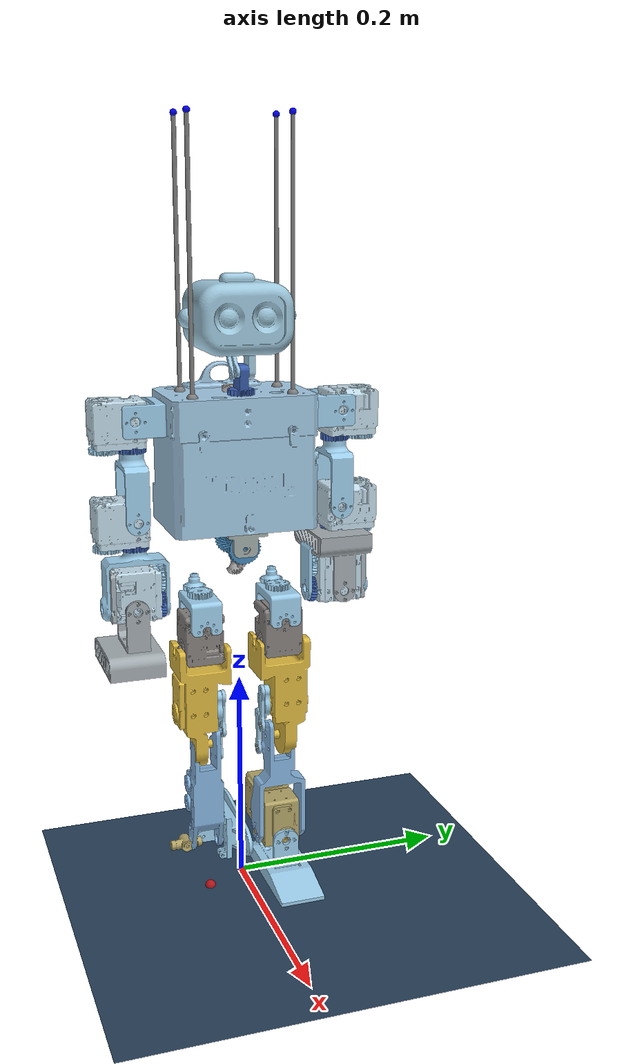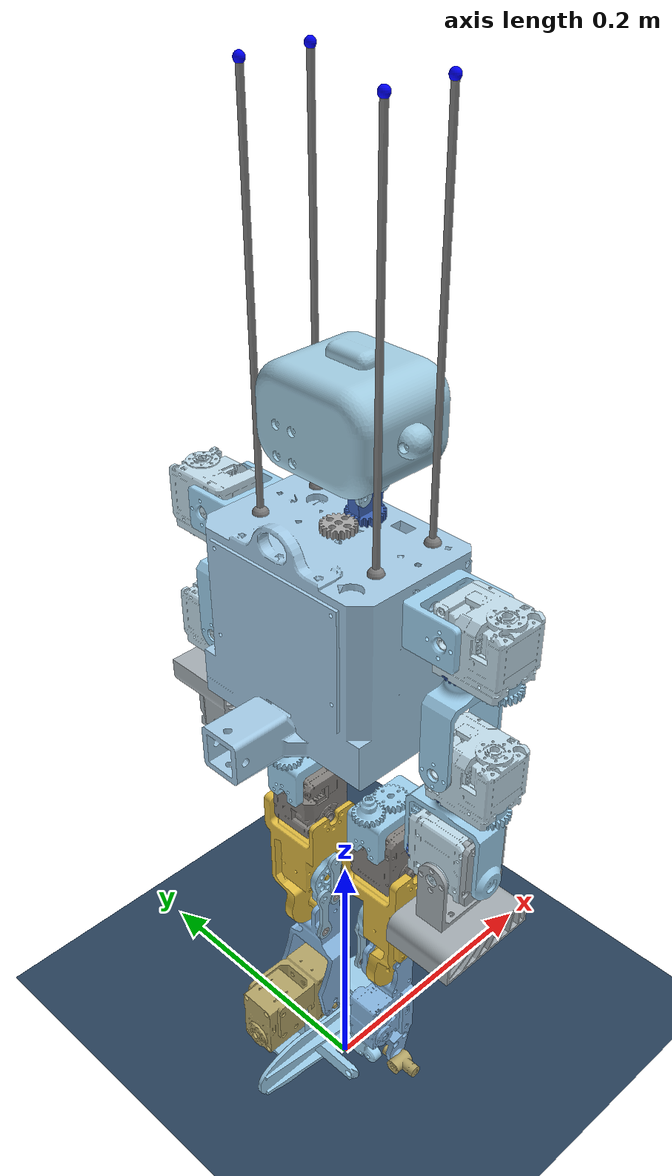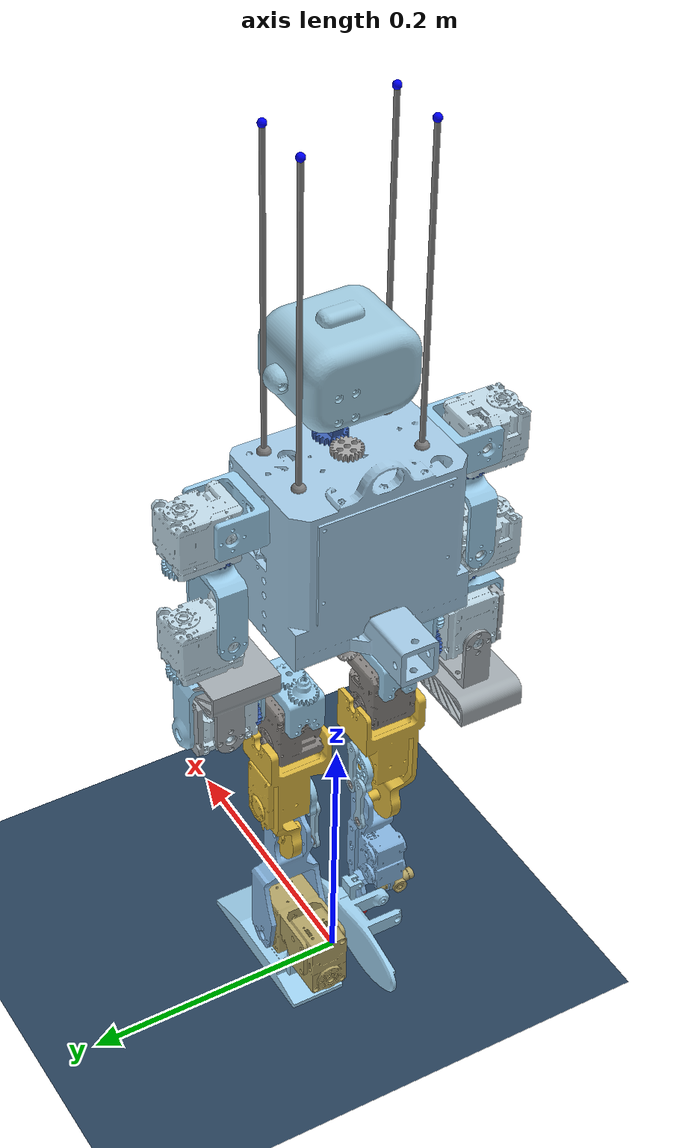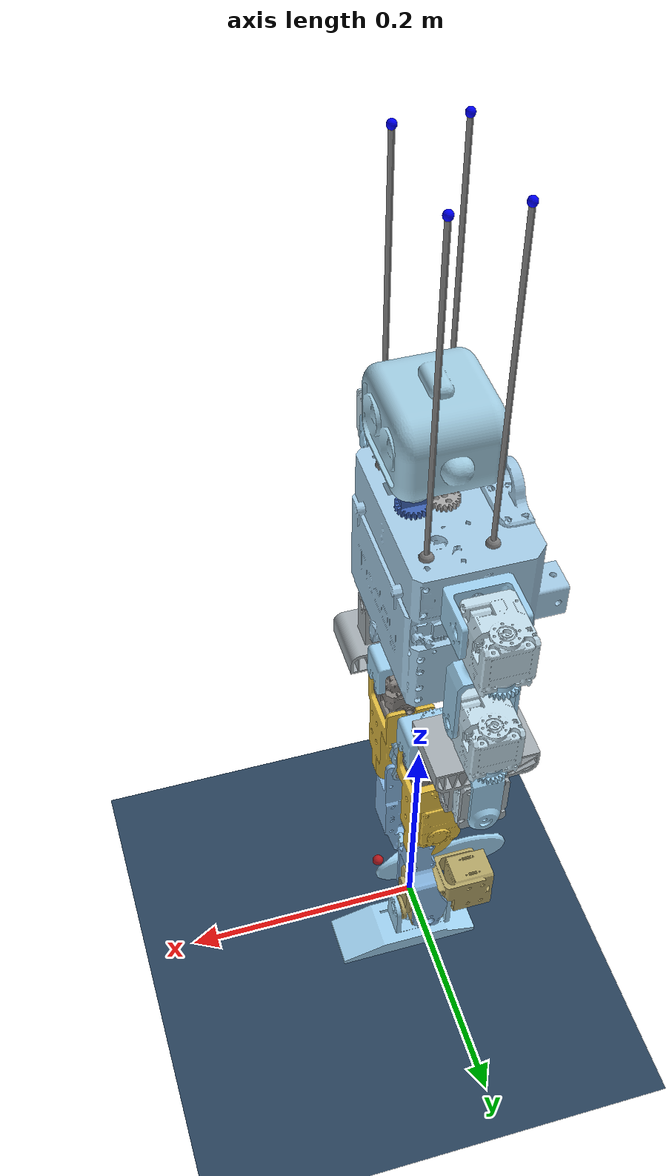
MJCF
<mujoco model="toddlerbot_OP3_hang_scene"><include file="toddlerbot_OP3_hang.xml" /><statistic center="0 0 0.25" extent="0.6" /><visual><headlight diffuse="0.6 0.6 0.6" ambient="0.3 0.3 0.3" specular="0 0 0" /><rgba haze="0.15 0.25 0.35 1" /><global azimuth="160" elevation="-20" offwidth="1280" offheight="720" /></visual><worldbody><light pos="0 0 1.5" dir="0 0 -1" directional="true" /><camera name="perspective" pos="0.7 -0.7 0.7" xyaxes="1 1 0 -1 1 3" mode="trackcom" /><camera name="side" pos="0 -1 0.6" xyaxes="1 0 0 0 1 3" mode="trackcom" /><camera name="top" pos="0 0 1" xyaxes="0 1 0 -1 0 0" mode="trackcom" /><camera name="front" pos="1 0 0.6" xyaxes="0 1 0 -1 0 3" mode="trackcom" /><geom name="floor" size="0 0 0.05" type="plane" material="groundplane" condim="3" /></worldbody><asset><texture type="skybox" builtin="gradient" rgb1="0.3 0.5 0.7" rgb2="0 0 0" width="512" height="3072" /><texture type="2d" name="groundplane" builtin="checker" mark="edge" rgb1="0.2 0.3 0.4" rgb2="0.1 0.2 0.3" markrgb="0.8 0.8 0.8" width="300" height="300" /><material name="groundplane" texture="groundplane" texuniform="true" texrepeat="5 5" reflectance="0.0" /></asset></mujoco>

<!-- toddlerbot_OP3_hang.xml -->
<mujoco model="toddlerbot_OP3">
  <compiler angle="radian" autolimits="true" />

  <asset>
    <mesh name="torso_visual" file="../assemblies/toddlerbot/meshes/torso_visual.stl" />
    <mesh name="spur_1m_20t_visual" file="../assemblies/toddlerbot/meshes/spur_1m_20t_visual.stl" />
    <mesh name="neck_yaw_link_v2_visual" file="../assemblies/toddlerbot/meshes/neck_yaw_link_v2_visual.stl" />
    <mesh name="head_visual" file="../assemblies/toddlerbot/meshes/head_visual.stl" />
    <mesh name="motor_plate_visual" file="../assemblies/toddlerbot/meshes/motor_plate_visual.stl" />
    <mesh name="bearing_683_visual" file="../assemblies/toddlerbot/meshes/bearing_683_visual.stl" />
    <mesh name="bearing_683_2_visual" file="../assemblies/toddlerbot/meshes/bearing_683_2_visual.stl" />
    <mesh name="neck_rod_visual" file="../assemblies/toddlerbot/meshes/neck_rod_visual.stl" />
    <mesh name="neck_rod_2_visual" file="../assemblies/toddlerbot/meshes/neck_rod_2_visual.stl" />
    <mesh name="waist_gears_visual" file="../assemblies/toddlerbot/meshes/waist_gears_visual.stl" />
    <mesh name="waist_link_visual" file="../assemblies/toddlerbot/meshes/waist_link_visual.stl" />
    <mesh name="spiral_bevel_1m_14t_30deg_visual" file="../assemblies/toddlerbot/meshes/spiral_bevel_1m_14t_30deg_visual.stl" />
    <mesh name="spiral_bevel_1m_14t_30deg_2_visual" file="../assemblies/toddlerbot/meshes/spiral_bevel_1m_14t_30deg_2_visual.stl" />
    <mesh name="spur_gear_19_teeth_visual" file="../assemblies/toddlerbot/meshes/spur_gear_19_teeth_visual.stl" />
    <mesh name="spur_gear_21_teeth_visual" file="../assemblies/toddlerbot/meshes/spur_gear_21_teeth_visual.stl" />
    <mesh name="spur_gear_19_teeth_2_visual" file="../assemblies/toddlerbot/meshes/spur_gear_19_teeth_2_visual.stl" />
    <mesh name="spur_gear_21_teeth_2_visual" file="../assemblies/toddlerbot/meshes/spur_gear_21_teeth_2_visual.stl" />
    <mesh name="left_hip_yaw_link_visual" file="../assemblies/left_leg_OP3/meshes/left_hip_yaw_link_visual.stl" />
    <mesh name="left_hip_roll_link_visual" file="../assemblies/left_leg_OP3/meshes/left_hip_roll_link_visual.stl" />
    <mesh name="left_hip_pitch_link_xm430_visual" file="../assemblies/left_leg_OP3/meshes/left_hip_pitch_link_xm430_visual.stl" />
    <mesh name="left_calf_link_visual" file="../assemblies/left_leg_OP3/meshes/left_calf_link_visual.stl" />
    <mesh name="left_bearing_683_visual" file="../assemblies/left_leg_OP3/meshes/left_bearing_683_visual.stl" />
    <mesh name="left_bearing_683_2_visual" file="../assemblies/left_leg_OP3/meshes/left_bearing_683_2_visual.stl" />
    <mesh name="left_ank_pitch_link_visual" file="../assemblies/left_leg_OP3/meshes/left_ank_pitch_link_visual.stl" />
    <mesh name="left_ank_roll_link_visual" file="../assemblies/left_leg_OP3/meshes/left_ank_roll_link_visual.stl" />
    <mesh name="left_xm430_plate_visual" file="../assemblies/left_leg_OP3/meshes/left_xm430_plate_visual.stl" />
    <mesh name="left_knee_rod_visual" file="../assemblies/left_leg_OP3/meshes/left_knee_rod_visual.stl" />
    <mesh name="left_knee_rod_2_visual" file="../assemblies/left_leg_OP3/meshes/left_knee_rod_2_visual.stl" />
    <mesh name="right_hip_yaw_link_visual" file="../assemblies/right_leg_OP3/meshes/right_hip_yaw_link_visual.stl" />
    <mesh name="right_hip_roll_link_visual" file="../assemblies/right_leg_OP3/meshes/right_hip_roll_link_visual.stl" />
    <mesh name="right_hip_pitch_link_xm430_visual" file="../assemblies/right_leg_OP3/meshes/right_hip_pitch_link_xm430_visual.stl" />
    <mesh name="right_calf_link_visual" file="../assemblies/right_leg_OP3/meshes/right_calf_link_visual.stl" />
    <mesh name="right_bearing_683_visual" file="../assemblies/right_leg_OP3/meshes/right_bearing_683_visual.stl" />
    <mesh name="right_bearing_683_2_visual" file="../assemblies/right_leg_OP3/meshes/right_bearing_683_2_visual.stl" />
    <mesh name="right_ank_pitch_link_visual" file="../assemblies/right_leg_OP3/meshes/right_ank_pitch_link_visual.stl" />
    <mesh name="right_ank_roll_link_visual" file="../assemblies/right_leg_OP3/meshes/right_ank_roll_link_visual.stl" />
    <mesh name="right_xm430_plate_visual" file="../assemblies/right_leg_OP3/meshes/right_xm430_plate_visual.stl" />
    <mesh name="right_knee_rod_visual" file="../assemblies/right_leg_OP3/meshes/right_knee_rod_visual.stl" />
    <mesh name="right_knee_rod_2_visual" file="../assemblies/right_leg_OP3/meshes/right_knee_rod_2_visual.stl" />
    <mesh name="left_sho_pitch_link_visual" file="../assemblies/left_arm_umi/meshes/left_sho_pitch_link_visual.stl" />
    <mesh name="left_2xl430_gears_visual" file="../assemblies/left_arm_umi/meshes/left_2xl430_gears_visual.stl" />
    <mesh name="left_spur_1m_24t_drive_visual" file="../assemblies/left_arm_umi/meshes/left_spur_1m_24t_drive_visual.stl" />
    <mesh name="left_spur_1m_24t_driven_visual" file="../assemblies/left_arm_umi/meshes/left_spur_1m_24t_driven_visual.stl" />
    <mesh name="left_sho_yaw_link_visual" file="../assemblies/left_arm_umi/meshes/left_sho_yaw_link_visual.stl" />
    <mesh name="left_2xl430_gears_2_visual" file="../assemblies/left_arm_umi/meshes/left_2xl430_gears_2_visual.stl" />
    <mesh name="left_spur_1m_24t_drive_2_visual" file="../assemblies/left_arm_umi/meshes/left_spur_1m_24t_drive_2_visual.stl" />
    <mesh name="left_spur_1m_24t_driven_2_visual" file="../assemblies/left_arm_umi/meshes/left_spur_1m_24t_driven_2_visual.stl" />
    <mesh name="left_elb_yaw_link_visual" file="../assemblies/left_arm_umi/meshes/left_elb_yaw_link_visual.stl" />
    <mesh name="left_spur_1m_24t_driven_3_visual" file="../assemblies/left_arm_umi/meshes/left_spur_1m_24t_driven_3_visual.stl" />
    <mesh name="left_2xl430_gears_3_visual" file="../assemblies/left_arm_umi/meshes/left_2xl430_gears_3_visual.stl" />
    <mesh name="left_spur_1m_24t_drive_3_visual" file="../assemblies/left_arm_umi/meshes/left_spur_1m_24t_drive_3_visual.stl" />
    <mesh name="left_hand_visual" file="../assemblies/left_arm_umi/meshes/left_hand_visual.stl" />
    <mesh name="left_wrist_bearing_plate_visual" file="../assemblies/left_arm_umi/meshes/left_wrist_bearing_plate_visual.stl" />
    <mesh name="right_sho_pitch_link_visual" file="../assemblies/right_arm_umi/meshes/right_sho_pitch_link_visual.stl" />
    <mesh name="right_2xl430_gears_visual" file="../assemblies/right_arm_umi/meshes/right_2xl430_gears_visual.stl" />
    <mesh name="right_spur_1m_24t_drive_visual" file="../assemblies/right_arm_umi/meshes/right_spur_1m_24t_drive_visual.stl" />
    <mesh name="right_spur_1m_24t_driven_visual" file="../assemblies/right_arm_umi/meshes/right_spur_1m_24t_driven_visual.stl" />
    <mesh name="right_sho_yaw_link_visual" file="../assemblies/right_arm_umi/meshes/right_sho_yaw_link_visual.stl" />
    <mesh name="right_2xl430_gears_2_visual" file="../assemblies/right_arm_umi/meshes/right_2xl430_gears_2_visual.stl" />
    <mesh name="right_spur_1m_24t_drive_2_visual" file="../assemblies/right_arm_umi/meshes/right_spur_1m_24t_drive_2_visual.stl" />
    <mesh name="right_spur_1m_24t_driven_2_visual" file="../assemblies/right_arm_umi/meshes/right_spur_1m_24t_driven_2_visual.stl" />
    <mesh name="right_elb_yaw_link_visual" file="../assemblies/right_arm_umi/meshes/right_elb_yaw_link_visual.stl" />
    <mesh name="right_spur_1m_24t_driven_3_visual" file="../assemblies/right_arm_umi/meshes/right_spur_1m_24t_driven_3_visual.stl" />
    <mesh name="right_2xl430_gears_3_visual" file="../assemblies/right_arm_umi/meshes/right_2xl430_gears_3_visual.stl" />
    <mesh name="right_spur_1m_24t_drive_3_visual" file="../assemblies/right_arm_umi/meshes/right_spur_1m_24t_drive_3_visual.stl" />
    <mesh name="right_hand_visual" file="../assemblies/right_arm_umi/meshes/right_hand_visual.stl" />
    <mesh name="right_wrist_bearing_plate_visual" file="../assemblies/right_arm_umi/meshes/right_wrist_bearing_plate_visual.stl" />
  </asset>

  <worldbody>
    <body name="torso" pos="0 0 0.3451" quat="1 0 0 0">
      <inertial pos="-0.00453191 -0.00330468 0.0655941" quat="1.0 0.0 0.0 0.0" mass="1.13697" diaginertia="2.98259e-03 2.39695e-03 2.51264e-03" />
      <freejoint />
      <geom type="mesh" rgba="0.637613 0.7914 0.897448 1" mesh="torso_visual" class="visual" />
      <body name="spur_1m_20t" pos="-0.005 0 0.121487" quat="1 0 0 0">
        <inertial pos="0 0 0.00338423" quat="0.5 0.5 -0.5 0.5" mass="0.0015778" diaginertia="8.17371e-08 4.58744e-08 4.58744e-08" />
        <joint name="neck_yaw_drive" pos="0 0 0" axis="0 0 1" range="-2.87979 2.87979" damping="0.134" armature="0.0035" frictionloss="0.014" />
        <geom type="mesh" rgba="0.647059 0.647059 0.647059 1" mesh="spur_1m_20t_visual" class="visual" />
      </body>
      <body name="neck_yaw_link_v2" pos="0.016 0 0.122487" quat="1 0 0 0">
        <inertial pos="-1.1404e-06 -1.18419e-10 0.00825718" quat="0.707105 -0.00174547 -0.00174547 0.707105" mass="0.00672988" diaginertia="6.12185e-07 5.22667e-07 2.80623e-07" />
        <joint name="neck_yaw_driven" pos="0 0 0" axis="0 0 1" range="-2.61799 2.61799" damping="0.0" armature="0.0" frictionloss="0.0" />
        <geom type="mesh" rgba="0.231373 0.380392 0.705882 1" mesh="neck_yaw_link_v2_visual" class="visual" />
        <body name="head" pos="0 0.004 0.0194" quat="-0.499092 -0.499092 -0.500906 0.500906">
          <inertial pos="-0.0438326 -0.0104902 -0.00040226" quat="0.968184 -0.235784 -0.0566948 0.0617352" mass="0.127721" diaginertia="0.00011586 0.000102768 8.14402e-05" />
          <joint name="neck_pitch" pos="0 0 0" axis="0 0 1" range="-1.39626 0.610865" damping="0.0" armature="0.0" frictionloss="0.0" />
          <geom type="mesh" rgba="0.626858 0.794552 0.876526 1" mesh="head_visual" class="visual" />
          <body name="motor_plate" pos="-0.0326157 -0.027 0.0025" quat="0 0 1 0">
            <inertial pos="0 0 -0.00282818" quat="0.092296 0.701057 -0.092296 0.701057" mass="0.0017" diaginertia="9.21947e-08 5.20711e-08 4.77616e-08" />
            <joint name="neck_pitch_act" pos="0 0 0" axis="0 0 1" range="-1.39626 0.610865" damping="0.134" armature="0.0035" frictionloss="0.014" />
            <geom type="mesh" rgba="0.647059 0.647059 0.647059 1" mesh="motor_plate_visual" class="visual" />
            <body name="bearing_683" pos="-0.00194114 -0.00724444 -0.0055" quat="0.904588 0 0 0.426286">
              <inertial pos="0 0 -0.00155" quat="0.5 0.5 -0.5 0.5" mass="0.000486947" diaginertia="3.53036e-09 2.15515e-09 2.15515e-09" />
              <joint name="neck_pitch_front_rev_2" pos="0 0 0" axis="0 0 1" range="-6.28319 6.28319" damping="0.0" armature="0.0" frictionloss="0.0" />
              <geom type="mesh" rgba="0.647059 0.647059 0.647059 1" mesh="bearing_683_visual" class="visual" />
            </body>
            <body name="bearing_683_2" pos="0.00194114 0.00724444 -0.0055" quat="0.905205 0 0 0.424976">
              <inertial pos="0 0 -0.00155" quat="0.5 0.5 -0.5 0.5" mass="0.000486947" diaginertia="3.53036e-09 2.15515e-09 2.15515e-09" />
              <joint name="neck_pitch_back_rev_2" pos="0 0 0" axis="0 0 1" range="-6.28319 6.28319" damping="0.0" armature="0.0" frictionloss="0.0" />
              <geom type="mesh" rgba="0.647059 0.647059 0.647059 1" mesh="bearing_683_2_visual" class="visual" />
            </body>
          </body>
        </body>
        <body name="neck_rod" pos="-0.00724444 -0.004 0.0174589" quat="0.302589 -0.302589 -0.639093 -0.639093">
          <inertial pos="0.017943 -4.23023e-05 -0.00160238" quat="0.000198565 0.707349 -0.000198429 0.706864" mass="0.00316295" diaginertia="8.05739e-07 7.94302e-07 1.61826e-08" />
          <joint name="neck_pitch_front_rev_1" pos="0 0 0" axis="0 0 1" range="-6.28319 6.28319" damping="0.0" armature="0.0" frictionloss="0.0" />
          <geom type="mesh" rgba="0.620516 0.786408 0.885943 1" mesh="neck_rod_visual" class="visual" />
        </body>
        <body name="neck_rod_2" pos="0.00724444 -0.004 0.0213411" quat="-0.301664 0.301664 0.63953 0.63953">
          <inertial pos="0.0179011 4.23023e-05 -0.00160238" quat="-0.000198322 0.707349 0.000198186 0.706865" mass="0.00316295" diaginertia="8.04875e-07 7.93438e-07 1.61826e-08" />
          <joint name="neck_pitch_back_rev_1" pos="0 0 0" axis="0 0 1" range="-6.28319 6.28319" damping="0.0" armature="0.0" frictionloss="0.0" />
          <geom type="mesh" rgba="0.620516 0.786408 0.885943 1" mesh="neck_rod_2_visual" class="visual" />
        </body>
      </body>
      <body name="waist_gears" pos="0 0 0" quat="0 0 0 1">
        <inertial pos="-2.9089e-07 5.50356e-08 -0.012593" quat="0.49998 0.500022 0.500015 0.499983" mass="0.0263372" diaginertia="7.30247e-06 6.98591e-06 1.5367e-06" />
        <joint name="waist_yaw" pos="0 0 0" axis="0 0 1" range="-1.5708 1.5708" damping="0.108" armature="0.0053" frictionloss="0.001" />
        <geom type="mesh" rgba="0.269062 0.522792 0.704918 1" mesh="waist_gears_visual" class="visual" />
        <body name="waist_link" pos="-0.0227079 0 -0.014" quat="0.5 -0.5 -0.5 0.5">
          <inertial pos="-7.97405e-06 0.0262289 -0.0299843" quat="0.529847 0.469443 0.509625 0.489048" mass="0.17012" diaginertia="0.000206127 0.000162044 7.0129e-05" />
          <joint name="waist_roll" pos="0 0 0" axis="0 0 1" range="-0.523599 0.523599" damping="0.488" armature="0.0018" frictionloss="0.03" />
          <geom type="mesh" rgba="0.634303 0.681265 0.66861 1" mesh="waist_link_visual" class="visual" />
          <body name="spiral_bevel_1m_14t_30deg" pos="0 0.0196 -0.01275" quat="0.5 0.5 0.5 -0.5">
            <inertial pos="7.49714e-10 7.18022e-10 0.0066869" quat="0.5 0.5 -0.5 0.5" mass="0.000732615" diaginertia="1.4356e-08 1.34951e-08 1.34951e-08" />
            <joint name="waist_act_1" pos="0 0 0" axis="0 0 1" range="-4.67748 4.67748" damping="0.134" armature="0.0035" frictionloss="0.014" />
            <geom type="mesh" rgba="0.647059 0.647059 0.647059 1" mesh="spiral_bevel_1m_14t_30deg_visual" class="visual" />
          </body>
          <body name="spiral_bevel_1m_14t_30deg_2" pos="0 0.0196 -0.03275" quat="0.552838 0.552838 0.440874 -0.440874">
            <inertial pos="5.71143e-10 8.66847e-10 0.0066869" quat="0.5 0.5 -0.5 0.5" mass="0.000732615" diaginertia="1.4356e-08 1.34951e-08 1.34951e-08" />
            <joint name="waist_act_2" pos="0 0 0" axis="0 0 1" range="-4.67748 4.67748" damping="0.134" armature="0.0035" frictionloss="0.014" />
            <geom type="mesh" rgba="0.647059 0.647059 0.647059 1" mesh="spiral_bevel_1m_14t_30deg_2_visual" class="visual" />
          </body>
          <body name="spur_gear_19_teeth" pos="-0.037 0.0311 -0.0392" quat="0 0 0.707107 0.707107">
            <inertial pos="3.98262e-10 -1.60016e-10 0.0101085" quat="0.5 0.5 -0.5 0.5" mass="0.0010325" diaginertia="4.06876e-08 3.32386e-08 3.32386e-08" />
            <joint name="left_hip_yaw_drive" pos="0 0 0" axis="0 0 1" range="-1.73614 1.73614" damping="0.134" armature="0.0035" frictionloss="0.014" />
            <geom type="mesh" rgba="0.615686 0.811765 0.929412 1" mesh="spur_gear_19_teeth_visual" class="visual" />
          </body>
          <body name="spur_gear_21_teeth" pos="-0.037 0.0411 -0.0195" quat="0.5 -0.5 -0.5 -0.5">
            <inertial pos="-2.35688e-12 0 0.0142238" quat="0.5 0.5 0.5 0.5" mass="0.0190254" diaginertia="7.88717e-06 7.83448e-06 2.82998e-06" />
            <joint name="left_hip_yaw_driven" pos="0 0 0" axis="0 0 1" range="-1.5708 1.5708" damping="0.0" armature="0.0" frictionloss="0.685" />
            <geom type="mesh" rgba="0.615686 0.811765 0.929412 1" mesh="spur_gear_21_teeth_visual" class="visual" />
            <geom pos="0 0 0.005" quat="0 -1 0 0" type="mesh" rgba="0.615686 0.811765 0.929412 1" mesh="left_hip_yaw_link_visual" class="visual" />
            <body name="hip_roll_link" pos="0.019 0 0.031" quat="-0.707107 0 -0.707107 0">
              <inertial pos="-0.0119998 -0.000495981 -0.0185041" quat="-0.273471 0.652073 -0.267709 0.654482" mass="0.1106" diaginertia="3.14464e-05 3.02975e-05 2.28182e-05" />
              <joint name="left_hip_roll" pos="0 0 0" axis="0 0 1" range="-0.785398 0.785398" damping="0.075" armature="0.0044" frictionloss="0.252" />
              <geom type="mesh" rgba="0.516987 0.503478 0.490506 1" mesh="left_hip_roll_link_visual" class="visual" />
              <body name="left_hip_pitch_link_xm430" pos="-0.024 -0.019 -0.019" quat="0.5 0.5 0.5 -0.5">
                <inertial pos="-0.000757292 -0.0507148 -0.0126562" quat="0.719538 0.693946 0.0141894 -0.0224076" mass="0.114801" diaginertia="6.60879e-05 6.2263e-05 2.35772e-05" />
                <joint name="left_hip_pitch" pos="0 0 0" axis="0 0 1" range="-1.5708 1.5708" damping="0.075" armature="0.0044" frictionloss="0.252" />
                <geom type="mesh" rgba="0.870722 0.72641 0.247852 1" mesh="left_hip_pitch_link_xm430_visual" class="visual" />
                <body name="left_calf_link" pos="0 -0.096 -0.0092" quat="1 0 0 0">
                  <inertial pos="-0.00445232 -0.0407105 -0.00939617" quat="0.69479 0.718422 0.0108806 0.0319238" mass="0.031" diaginertia="3.27619e-05 2.76362e-05 7.62792e-06" />
                  <joint name="left_knee" pos="0 0 0" axis="0 0 1" range="0 2.0944" damping="0.0" armature="0.0" frictionloss="0.0" />
                  <geom type="mesh" rgba="0.522707 0.7074 0.875332 1" mesh="left_calf_link_visual" class="visual" />
                  <body name="bearing_683_3" pos="-0.00574025 0.0138582 -0.0262" quat="0.705054 0 0 0.709153">
                    <inertial pos="0 0 -0.00155" quat="0.5 0.5 -0.5 0.5" mass="0.000486947" diaginertia="3.53036e-09 2.15515e-09 2.15515e-09" />
                    <joint name="left_knee_front_rev_2" pos="0 0 0" axis="0 0 1" range="-6.28319 6.28319" damping="0.0" armature="0.0" frictionloss="0.0" />
                    <geom type="mesh" rgba="0.647059 0.647059 0.647059 1" mesh="left_bearing_683_visual" class="visual" />
                  </body>
                  <body name="bearing_683_4" pos="0.00574025 -0.0138582 -0.0262" quat="0.706081 0 0 0.708131">
                    <inertial pos="0 0 -0.00155" quat="0.5 0.5 -0.5 0.5" mass="0.000486947" diaginertia="3.53036e-09 2.15515e-09 2.15515e-09" />
                    <joint name="left_knee_back_rev_2" pos="0 0 0" axis="0 0 1" range="-6.28319 6.28319" damping="0.0" armature="0.0" frictionloss="0.0" />
                    <geom type="mesh" rgba="0.647059 0.647059 0.647059 1" mesh="left_bearing_683_2_visual" class="visual" />
                  </body>
                  <body name="ank_pitch_link" pos="0.0005 -0.1 -0.0294" quat="1 0 0 0">
                    <inertial pos="0.0177762 0.0123003 0.018832" quat="-0.00797458 0.705008 0.00778694 0.709112" mass="0.176764" diaginertia="0.000121783 0.000107025 4.72653e-05" />
                    <joint name="left_ank_pitch" pos="0 0 0" axis="0 0 1" range="-1.74533 0.785398" damping="0.08" armature="0.0012" frictionloss="0.134" />
                    <geom type="mesh" rgba="0.703217 0.645149 0.404847 1" mesh="left_ank_pitch_link_visual" class="visual" />
                    <body name="ank_roll_link" pos="0.02275 0 0.019" quat="0.5 0.5 0.5 0.5">
                      <inertial pos="-0.0270366 2.02954e-12 -0.0336202" quat="0.706436 0.0307846 0.0307846 0.706436" mass="0.0426" diaginertia="3.78543e-05 3.77309e-05 9.97247e-06" />
                      <joint name="left_ank_roll" pos="0 0 0" axis="0 0 1" range="-1.5708 1.5708" damping="0.127" armature="0.004" frictionloss="0.069" />
                      <geom type="mesh" rgba="0.615686 0.811765 0.929412 1" mesh="left_ank_roll_link_visual" class="visual" />
                      <site name="left_foot_center" pos="-0.039 0.0 -0.039" type="sphere" size="0.005" rgba="0.9 0.1 0.1 0.8" />
                      <geom name="ank_roll_link_collision_ball_1" type="sphere" size="0.004" pos="-0.035 -0.017 -0.095" rgba="0.615686 0.811765 0.929412 1" class="collision" />
                      <geom name="ank_roll_link_collision_ball_2" type="sphere" size="0.004" pos="-0.035 0.017 -0.095" rgba="0.615686 0.811765 0.929412 1" class="collision" />
                      <geom name="ank_roll_link_collision_ball_3" type="sphere" size="0.004" pos="-0.035 -0.017 0.017" rgba="0.615686 0.811765 0.929412 1" class="collision" />
                      <geom name="ank_roll_link_collision_ball_4" type="sphere" size="0.004" pos="-0.035 0.017 0.017" rgba="0.615686 0.811765 0.929412 1" class="collision" />
                    </body>
                  </body>
                </body>
                <body name="xm430_plate" pos="-0.00015 -0.0615 -0.0304" quat="0.707107 0 0 0.707107">
                  <inertial pos="0 0 -0.0024039" quat="-0.13795 0.69352 0.13795 0.69352" mass="0.0027" diaginertia="3.85335e-07 2.95759e-07 1.00777e-07" />
                  <joint name="left_knee_act" pos="0 0 0" axis="0 0 1" range="0 2.0944" damping="0.08" armature="0.0012" frictionloss="0.134" />
                  <geom type="mesh" rgba="0.615686 0.811765 0.929412 1" mesh="left_xm430_plate_visual" class="visual" />
                  <body name="knee_rod" pos="0.0138582 0.00574025 -0.005" quat="0.00289853 0 0 -0.999996">
                    <inertial pos="0.0145945 -4.23023e-05 -0.00159962" quat="0.000218324 0.707354 -0.000218171 0.70686" mass="0.00316295" diaginertia="6.22669e-07 6.01533e-07 2.58956e-08" />
                    <joint name="left_knee_front_rev_1" pos="0 0 0" axis="0 0 1" range="-6.28319 6.28319" damping="0.0" armature="0.0" frictionloss="0.0" />
                    <geom type="mesh" rgba="0.620516 0.786408 0.885943 1" mesh="left_knee_rod_visual" class="visual" />
                  </body>
                  <body name="knee_rod_2" pos="-0.0138582 -0.00574025 -0.005" quat="0.00144929 0 0 -0.999999">
                    <inertial pos="0.0145945 4.2301e-05 -0.00159962" quat="-0.000218317 0.707354 0.000218165 0.70686" mass="0.00316295" diaginertia="6.22669e-07 6.01533e-07 2.58956e-08" />
                    <joint name="left_knee_back_rev_1" pos="0 0 0" axis="0 0 1" range="-6.28319 6.28319" damping="0.0" armature="0.0" frictionloss="0.0" />
                    <geom type="mesh" rgba="0.620516 0.786408 0.885943 1" mesh="left_knee_rod_2_visual" class="visual" />
                  </body>
                </body>
              </body>
            </body>
          </body>
          <body name="spur_gear_19_teeth_2" pos="0.037 0.0311 -0.0392" quat="0 0 0.707107 0.707107">
            <inertial pos="3.98262e-10 -1.60016e-10 0.0101085" quat="0.5 0.5 -0.5 0.5" mass="0.0010325" diaginertia="4.06876e-08 3.32386e-08 3.32386e-08" />
            <joint name="right_hip_yaw_drive" pos="0 0 0" axis="0 0 1" range="-1.73614 1.73614" damping="0.134" armature="0.0035" frictionloss="0.014" />
            <geom type="mesh" rgba="0.615686 0.811765 0.929412 1" mesh="spur_gear_19_teeth_2_visual" class="visual" />
          </body>
          <body name="spur_gear_21_teeth_2" pos="0.037 0.0411 -0.0195" quat="0.5 -0.5 -0.5 -0.5">
            <inertial pos="-2.35688e-12 0 0.0142244" quat="0.5 0.5 0.5 0.5" mass="0.0190254" diaginertia="7.88691e-06 7.83448e-06 2.82972e-06" />
            <joint name="right_hip_yaw_driven" pos="0 0 0" axis="0 0 1" range="-1.5708 1.5708" damping="0.0" armature="0.0" frictionloss="0.685" />
            <geom type="mesh" rgba="0.615686 0.811765 0.929412 1" mesh="spur_gear_21_teeth_2_visual" class="visual" />
            <geom pos="0 0 0.005" quat="0 -1 0 0" type="mesh" rgba="0.615686 0.811765 0.929412 1" mesh="right_hip_yaw_link_visual" class="visual" />
            <body name="hip_roll_link_2" pos="-0.019 0 0.031" quat="0 -0.707107 0 0.707107">
              <inertial pos="-0.0119998 -0.000495981 -0.0185041" quat="-0.273471 0.652073 -0.267709 0.654482" mass="0.1106" diaginertia="3.14464e-05 3.02975e-05 2.28182e-05" />
              <joint name="right_hip_roll" pos="0 0 0" axis="0 0 1" range="-0.785398 0.785398" damping="0.075" armature="0.0044" frictionloss="0.252" />
              <geom type="mesh" rgba="0.516987 0.503478 0.490506 1" mesh="right_hip_roll_link_visual" class="visual" />
              <body name="right_hip_pitch_link_xm430" pos="-0.024 -0.019 -0.019" quat="0.5 0.5 0.5 -0.5">
                <inertial pos="0.000757159 -0.0507148 -0.0126562" quat="0.719539 0.693946 -0.0141939 0.0224005" mass="0.114801" diaginertia="6.60879e-05 6.22631e-05 2.35772e-05" />
                <joint name="right_hip_pitch" pos="0 0 0" axis="0 0 1" range="-1.5708 1.5708" damping="0.075" armature="0.0044" frictionloss="0.252" />
                <geom type="mesh" rgba="0.870722 0.72641 0.247852 1" mesh="right_hip_pitch_link_xm430_visual" class="visual" />
                <body name="right_calf_link" pos="0 -0.096 -0.0092" quat="0 0 0 1">
                  <inertial pos="-0.00445232 0.0407105 -0.00939617" quat="0.718422 0.69479 -0.0319238 -0.0108806" mass="0.031" diaginertia="3.27619e-05 2.76362e-05 7.62792e-06" />
                  <joint name="right_knee" pos="0 0 0" axis="0 0 1" range="-2.0944 0" damping="0.0" armature="0.0" frictionloss="0.0" />
                  <geom type="mesh" rgba="0.522707 0.7074 0.875332 1" mesh="right_calf_link_visual" class="visual" />
                  <body name="bearing_683_5" pos="-0.00574025 -0.0138582 -0.0262" quat="0.00281484 0 0 0.999996">
                    <inertial pos="0 0 -0.00155" quat="0.5 0.5 -0.5 0.5" mass="0.000486947" diaginertia="3.53036e-09 2.15515e-09 2.15515e-09" />
                    <joint name="right_knee_front_rev_2" pos="0 0 0" axis="0 0 1" range="-6.28319 6.28319" damping="0.0" armature="0.0" frictionloss="0.0" />
                    <geom type="mesh" rgba="0.647059 0.647059 0.647059 1" mesh="right_bearing_683_visual" class="visual" />
                  </body>
                  <body name="bearing_683_6" pos="0.00574025 0.0138582 -0.0262" quat="0.00284659 0 0 0.999996">
                    <inertial pos="0 0 -0.00155" quat="0.5 0.5 -0.5 0.5" mass="0.000486947" diaginertia="3.53036e-09 2.15515e-09 2.15515e-09" />
                    <joint name="right_knee_back_rev_2" pos="0 0 0" axis="0 0 1" range="-6.28319 6.28319" damping="0.0" armature="0.0" frictionloss="0.0" />
                    <geom type="mesh" rgba="0.647059 0.647059 0.647059 1" mesh="right_bearing_683_2_visual" class="visual" />
                  </body>
                  <body name="ank_pitch_link_2" pos="0.0005 0.1 0.0086" quat="0 -1 0 0">
                    <inertial pos="0.0177702 0.0123013 0.0188135" quat="-0.00892062 0.704442 0.00690611 0.709672" mass="0.176764" diaginertia="0.000121859 0.000107094 4.72493e-05" />
                    <joint name="right_ank_pitch" pos="0 0 0" axis="0 0 1" range="-1.74533 0.785398" damping="0.08" armature="0.0012" frictionloss="0.134" />
                    <geom type="mesh" rgba="0.703217 0.645149 0.404847 1" mesh="right_ank_pitch_link_visual" class="visual" />
                    <body name="ank_roll_link_2" pos="0.02275 0 0.019" quat="0.5 0.5 0.5 0.5">
                      <inertial pos="-0.0270366 2.02954e-12 -0.0336202" quat="0.706436 0.0307846 0.0307846 0.706436" mass="0.0426" diaginertia="3.78543e-05 3.77309e-05 9.97247e-06" />
                      <joint name="right_ank_roll" pos="0 0 0" axis="0 0 1" range="-1.5708 1.5708" damping="0.127" armature="0.004" frictionloss="0.069" />
                      <geom type="mesh" rgba="0.615686 0.811765 0.929412 1" mesh="right_ank_roll_link_visual" class="visual" />
                      <site name="right_foot_center" pos="-0.039 0.0 -0.039" type="sphere" size="0.005" rgba="0.9 0.1 0.1 0.8" />
                      <geom name="ank_roll_link_2_collision_ball_1" type="sphere" size="0.004" pos="-0.035 -0.017 -0.095" rgba="0.615686 0.811765 0.929412 1" class="collision" />
                      <geom name="ank_roll_link_2_collision_ball_2" type="sphere" size="0.004" pos="-0.035 0.017 -0.095" rgba="0.615686 0.811765 0.929412 1" class="collision" />
                      <geom name="ank_roll_link_2_collision_ball_3" type="sphere" size="0.004" pos="-0.035 -0.017 0.017" rgba="0.615686 0.811765 0.929412 1" class="collision" />
                      <geom name="ank_roll_link_2_collision_ball_4" type="sphere" size="0.004" pos="-0.035 0.017 0.017" rgba="0.615686 0.811765 0.929412 1" class="collision" />
                    </body>
                  </body>
                </body>
                <body name="xm430_plate_2" pos="0.00015 -0.0615 -0.0304" quat="0 0 0 1">
                  <inertial pos="0 0 -0.0024039" quat="0.587938 0.392847 -0.587938 0.392847" mass="0.0027" diaginertia="3.85335e-07 2.95759e-07 1.00777e-07" />
                  <joint name="right_knee_act" pos="0 0 0" axis="0 0 1" range="-2.0944 0" damping="0.08" armature="0.0012" frictionloss="0.134" />
                  <geom type="mesh" rgba="0.615686 0.811765 0.929412 1" mesh="right_xm430_plate_visual" class="visual" />
                  <body name="knee_rod_3" pos="-0.00574025 -0.0138582 -0.005" quat="0.709094 0 0 0.705114">
                    <inertial pos="0.0145946 3.74168e-05 -0.00159962" quat="-0.000193109 0.707354 0.000192975 0.70686" mass="0.00316295" diaginertia="6.22669e-07 6.01533e-07 2.58955e-08" />
                    <joint name="right_knee_front_rev_1" pos="0 0 0" axis="0 0 1" range="-6.28319 6.28319" damping="0.0" armature="0.0" frictionloss="0.0" />
                    <geom type="mesh" rgba="0.620516 0.786408 0.885943 1" mesh="right_knee_rod_visual" class="visual" />
                  </body>
                  <body name="knee_rod_4" pos="0.00574025 0.0138582 -0.005" quat="0.709117 0 0 0.705091">
                    <inertial pos="0.0145946 3.92704e-05 -0.00159962" quat="-0.000202676 0.707354 0.000202535 0.70686" mass="0.00316295" diaginertia="6.22669e-07 6.01533e-07 2.58955e-08" />
                    <joint name="right_knee_back_rev_1" pos="0 0 0" axis="0 0 1" range="-6.28319 6.28319" damping="0.0" armature="0.0" frictionloss="0.0" />
                    <geom type="mesh" rgba="0.620516 0.786408 0.885943 1" mesh="right_knee_rod_2_visual" class="visual" />
                  </body>
                </body>
              </body>
            </body>
          </body>
        </body>
      </body>
      <body name="sho_pitch_link" pos="-0.0035 0.067 0.104237" quat="0.707107 -0.707107 0 0">
        <inertial pos="5.82542e-11 -5.12646e-05 0.00824408" quat="0.0155166 0.706937 0.0155166 0.706937" mass="0.0086" diaginertia="3.08064e-06 2.9104e-06 1.22729e-06" />
        <joint name="left_sho_pitch" pos="0 0 0" axis="0 0 1" range="-3.14159 1.5708" damping="0.127" armature="0.004" frictionloss="0.069" />
        <geom type="mesh" rgba="0.615686 0.811765 0.929412 1" mesh="left_sho_pitch_link_visual" class="visual" />
        <body name="2xl430_gears" pos="-0.019 0.001 0.027" quat="0 -0.707107 0 0.707107">
          <inertial pos="-0.0115932 -0.00242388 -0.0185511" quat="-0.0177754 0.697807 -0.134615 0.703298" mass="0.118" diaginertia="3.59197e-05 3.28027e-05 2.73617e-05" />
          <joint name="left_sho_roll" pos="0 0 0" axis="0 0 1" range="-1.5708 0.349066" damping="0.12" armature="0.0042" frictionloss="0.292" />
          <geom type="mesh" rgba="0.75606 0.858047 0.913203 1" mesh="left_2xl430_gears_visual" class="visual" />
          <body name="spur_1m_24t_drive" pos="-0.024 -0.019 -0.019" quat="0.707107 0.707107 0 0">
            <inertial pos="0 0 0.00479491" quat="0.5 0.5 -0.5 0.5" mass="0.0032" diaginertia="2.38389e-07 1.40193e-07 1.40193e-07" />
            <joint name="left_sho_yaw_drive" pos="0 0 0" axis="0 0 1" range="-2.61799 2.61799" damping="0.12" armature="0.0042" frictionloss="0.292" />
            <geom type="mesh" rgba="0.615686 0.811765 0.929412 1" mesh="left_spur_1m_24t_drive_visual" class="visual" />
          </body>
          <body name="spur_1m_24t_driven" pos="-3.58072e-10 -0.027 -0.019" quat="0.707107 0.707107 0 0">
            <inertial pos="0 0 0.0216847" mass="0.0172" diaginertia="1.08489e-05 7.45531e-06 4.71043e-06" />
            <joint name="left_sho_yaw_driven" pos="0 0 0" axis="0 0 1" range="-2.61799 2.61799" damping="0.0" armature="0.0" frictionloss="0.0" />
            <geom type="mesh" rgba="0.231373 0.380392 0.705882 1" mesh="left_spur_1m_24t_driven_visual" class="visual" />
            <geom pos="0 0 0.0016" quat="0 -1 0 0" type="mesh" rgba="0.615686 0.811765 0.929412 1" mesh="left_sho_yaw_link_visual" class="visual" />
            <body name="2xl430_gears_2" pos="0 0.019 0.0606" quat="0.707107 -0.707107 0 0">
              <inertial pos="-0.0115932 -0.00242388 -0.0185511" quat="-0.0177754 0.697807 -0.134615 0.703298" mass="0.118" diaginertia="3.59197e-05 3.28027e-05 2.73617e-05" />
              <joint name="left_elbow_roll" pos="0 0 0" axis="0 0 1" range="-1.91986 2.44346" damping="0.12" armature="0.0042" frictionloss="0.292" />
              <geom type="mesh" rgba="0.75606 0.858047 0.913203 1" mesh="left_2xl430_gears_2_visual" class="visual" />
              <body name="spur_1m_24t_drive_2" pos="-0.024 -0.019 -0.019" quat="0.707107 0.707107 0 0">
                <inertial pos="0 0 0.00479491" quat="0.5 0.5 -0.5 0.5" mass="0.0032" diaginertia="2.38389e-07 1.40193e-07 1.40193e-07" />
                <joint name="left_elbow_yaw_drive" pos="0 0 0" axis="0 0 1" range="-2.61799 2.61799" damping="0.12" armature="0.0042" frictionloss="0.292" />
                <geom type="mesh" rgba="0.615686 0.811765 0.929412 1" mesh="left_spur_1m_24t_drive_2_visual" class="visual" />
              </body>
              <body name="spur_1m_24t_driven_2" pos="-3.58064e-10 -0.027 -0.019" quat="0.5 0.5 0.5 -0.5">
                <inertial pos="4.05998e-08 0.00116422 0.0253227" quat="0.939794 -0.341741 0 0" mass="0.0229" diaginertia="1.98349e-05 1.15991e-05 1.01946e-05" />
                <joint name="left_elbow_yaw_driven" pos="0 0 0" axis="0 0 1" range="-2.61799 2.61799" damping="0.0" armature="0.0" frictionloss="0.0" />
                <geom type="mesh" rgba="0.231373 0.380392 0.705882 1" mesh="left_spur_1m_24t_driven_2_visual" class="visual" />
                <geom pos="0 0 0.0016" quat="0 -1 0 0" type="mesh" rgba="0.615686 0.811765 0.929412 1" mesh="left_elb_yaw_link_visual" class="visual" />
                <geom pos="0 0.0253 0.0536" quat="0.5 -0.5 0.5 0.5" type="mesh" rgba="0.231373 0.380392 0.705882 1" mesh="left_spur_1m_24t_driven_3_visual" class="visual" />
                <body name="2xl430_gears_3" pos="0 0.0237 0.0536" quat="0.707107 -0.707107 0 0">
                  <inertial pos="0.000431007 0.0114333 -0.0254637" quat="0.74781 0.660979 -0.0438307 0.0443286" mass="0.1229" diaginertia="3.89724e-05 3.40456e-05 3.02845e-05" />
                  <joint name="left_wrist_pitch_driven" pos="0 0 0" axis="0 0 1" range="-1.39626 1.91986" damping="0.0" armature="0.0" frictionloss="0.0" />
                  <geom type="mesh" rgba="0.75606 0.858047 0.913203 1" mesh="left_2xl430_gears_3_visual" class="visual" />
                  <geom pos="0.0155 0 -0.045" quat="0.707107 0 0 -0.707107" type="mesh" rgba="0.644963 0.690118 0.717068 1" mesh="left_wrist_bearing_plate_visual" class="visual" />
                  <body name="spur_1m_24t_drive_3" pos="-1.52441e-10 0.024 -0.008" quat="0.707107 0 0 -0.707107">
                    <inertial pos="0 0 0.00479491" quat="0.5 0.5 -0.5 0.5" mass="0.0032" diaginertia="2.38389e-07 1.40193e-07 1.40193e-07" />
                    <joint name="left_wrist_pitch_drive" pos="0 0 0" axis="0 0 1" range="-1.91986 1.39626" damping="0.12" armature="0.0042" frictionloss="0.292" />
                    <geom type="mesh" rgba="0.615686 0.811765 0.929412 1" mesh="left_spur_1m_24t_drive_3_visual" class="visual" />
                  </body>
                  <body name="hand" pos="0.019 -3.58082e-10 -0.027" quat="0 0.707107 0 0.707107">
                    <inertial pos="-0.00370787 0.0421273 -0.0184903" quat="0.857226 -0.00187348 0.000260562 0.514937" mass="0.0395" diaginertia="2.58069e-05 2.4304e-05 1.34665e-05" />
                    <joint name="left_wrist_roll" pos="0 0 0" axis="0 0 1" range="-1.91986 1.39626" damping="0.12" armature="0.0042" frictionloss="0.292" />
                    <geom type="mesh" rgba="0.641499 0.676247 0.697096 1" mesh="left_hand_visual" class="visual" />
                  </body>
                </body>
              </body>
            </body>
          </body>
        </body>
      </body>
      <body name="sho_pitch_link_2" pos="-0.0035 -0.067 0.104237" quat="0 0 0.707107 -0.707107">
        <inertial pos="5.82542e-11 -5.12646e-05 0.00824408" quat="0.0155166 0.706937 0.0155166 0.706937" mass="0.0086" diaginertia="3.08064e-06 2.9104e-06 1.22729e-06" />
        <joint name="right_sho_pitch" pos="0 0 0" axis="0 0 1" range="-1.5708 3.14159" damping="0.127" armature="0.004" frictionloss="0.069" />
        <geom type="mesh" rgba="0.615686 0.811765 0.929412 1" mesh="right_sho_pitch_link_visual" class="visual" />
        <body name="2xl430_gears_4" pos="-0.019 0.001 0.027" quat="0 0.707107 0 -0.707107">
          <inertial pos="-0.0115794 -0.00242258 -0.0185511" quat="-0.0158908 0.69769 -0.13596 0.703201" mass="0.118" diaginertia="3.59112e-05 3.27863e-05 2.73235e-05" />
          <joint name="right_sho_roll" pos="0 0 0" axis="0 0 1" range="-1.5708 0.349066" damping="0.12" armature="0.0042" frictionloss="0.292" />
          <geom type="mesh" rgba="0.75606 0.858047 0.913203 1" mesh="right_2xl430_gears_visual" class="visual" />
          <body name="spur_1m_24t_drive_4" pos="-0.024 -0.019 -0.019" quat="0.707107 0.707107 0 0">
            <inertial pos="0 0 0.00479491" quat="0.5 0.5 -0.5 0.5" mass="0.0032" diaginertia="2.38389e-07 1.40193e-07 1.40193e-07" />
            <joint name="right_sho_yaw_drive" pos="0 0 0" axis="0 0 1" range="-2.61799 2.61799" damping="0.12" armature="0.0042" frictionloss="0.292" />
            <geom type="mesh" rgba="0.615686 0.811765 0.929412 1" mesh="right_spur_1m_24t_drive_visual" class="visual" />
          </body>
          <body name="spur_1m_24t_driven_4" pos="-3.58068e-10 -0.027 -0.019" quat="0.707107 0.707107 0 0">
            <inertial pos="0 0 0.0216847" mass="0.0172" diaginertia="1.08489e-05 7.45531e-06 4.71043e-06" />
            <joint name="right_sho_yaw_driven" pos="0 0 0" axis="0 0 1" range="-2.61799 2.61799" damping="0.0" armature="0.0" frictionloss="0.0" />
            <geom type="mesh" rgba="0.231373 0.380392 0.705882 1" mesh="right_spur_1m_24t_driven_visual" class="visual" />
            <geom pos="0 0 0.0016" quat="0 1 0 0" type="mesh" rgba="0.615686 0.811765 0.929412 1" mesh="right_sho_yaw_link_visual" class="visual" />
            <body name="2xl430_gears_5" pos="0 0.019 0.0606" quat="-0.707107 0.707107 0 0">
              <inertial pos="-0.0115794 -0.00242258 -0.0185511" quat="-0.0158908 0.69769 -0.13596 0.703201" mass="0.118" diaginertia="3.59112e-05 3.27863e-05 2.73235e-05" />
              <joint name="right_elbow_roll" pos="0 0 0" axis="0 0 1" range="-1.91986 2.44346" damping="0.12" armature="0.0042" frictionloss="0.292" />
              <geom type="mesh" rgba="0.75606 0.858047 0.913203 1" mesh="right_2xl430_gears_2_visual" class="visual" />
              <body name="spur_1m_24t_drive_5" pos="-0.024 -0.019 -0.019" quat="0.707107 0.707107 0 0">
                <inertial pos="0 0 0.00479491" quat="0.5 0.5 -0.5 0.5" mass="0.0032" diaginertia="2.38389e-07 1.40193e-07 1.40193e-07" />
                <joint name="right_elbow_yaw_drive" pos="0 0 0" axis="0 0 1" range="-2.61799 2.61799" damping="0.12" armature="0.0042" frictionloss="0.292" />
                <geom type="mesh" rgba="0.615686 0.811765 0.929412 1" mesh="right_spur_1m_24t_drive_2_visual" class="visual" />
              </body>
              <body name="spur_1m_24t_driven_5" pos="-3.58071e-10 -0.027 -0.019" quat="0.707107 0.707107 0 0">
                <inertial pos="0.00116422 -4.05998e-08 0.0253227" quat="0.664535 0.241647 0.241647 0.664535" mass="0.0229" diaginertia="1.98349e-05 1.15991e-05 1.01946e-05" />
                <joint name="right_elbow_yaw_driven" pos="0 0 0" axis="0 0 1" range="-2.61799 2.61799" damping="0.0" armature="0.0" frictionloss="0.0" />
                <geom type="mesh" rgba="0.231373 0.380392 0.705882 1" mesh="right_spur_1m_24t_driven_2_visual" class="visual" />
                <geom pos="0 0 0.0016" quat="0 0.707107 -0.707107 0" type="mesh" rgba="0.615686 0.811765 0.929412 1" mesh="right_elb_yaw_link_visual" class="visual" />
                <geom pos="0.0253 0 0.0536" quat="0 0.707107 0 0.707107" type="mesh" rgba="0.231373 0.380392 0.705882 1" mesh="right_spur_1m_24t_driven_3_visual" class="visual" />
                <body name="2xl430_gears_6" pos="0.0237 0 0.0536" quat="-0.5 0.5 -0.5 0.5">
                  <inertial pos="0.000431007 0.0114201 -0.025465" quat="0.750218 0.658262 -0.0437552 0.0441562" mass="0.1229" diaginertia="3.89634e-05 3.40266e-05 3.02478e-05" />
                  <joint name="right_wrist_pitch_driven" pos="0 0 0" axis="0 0 1" range="-1.91986 1.39626" damping="0.0" armature="0.0" frictionloss="0.0" />
                  <geom type="mesh" rgba="0.75606 0.858047 0.913203 1" mesh="right_2xl430_gears_3_visual" class="visual" />
                  <geom pos="0.0155 0 -0.045" quat="0.707107 0 0 -0.707107" type="mesh" rgba="0.644963 0.690118 0.717068 1" mesh="right_wrist_bearing_plate_visual" class="visual" />
                  <body name="spur_1m_24t_drive_6" pos="-1.52443e-10 0.024 -0.008" quat="0.707107 0 0 -0.707107">
                    <inertial pos="0 0 0.00479491" quat="0.5 0.5 -0.5 0.5" mass="0.0032" diaginertia="2.38389e-07 1.40193e-07 1.40193e-07" />
                    <joint name="right_wrist_pitch_drive" pos="0 0 0" axis="0 0 1" range="-1.39626 1.91986" damping="0.12" armature="0.0042" frictionloss="0.292" />
                    <geom type="mesh" rgba="0.615686 0.811765 0.929412 1" mesh="right_spur_1m_24t_drive_3_visual" class="visual" />
                  </body>
                  <body name="hand_2" pos="0.019 -3.58068e-10 -0.027" quat="0.707107 0 0.707107 0">
                    <inertial pos="0.00370787 -0.0421273 -0.0195097" quat="0.857226 -0.00187348 0.000260562 0.514937" mass="0.0395" diaginertia="2.58069e-05 2.4304e-05 1.34665e-05" />
                    <joint name="right_wrist_roll" pos="0 0 0" axis="0 0 1" range="-1.39626 1.91986" damping="0.12" armature="0.0042" frictionloss="0.292" />
                    <geom type="mesh" rgba="0.641499 0.676247 0.697096 1" mesh="right_hand_visual" class="visual" />
                  </body>
                </body>
              </body>
            </body>
          </body>
        </body>
      </body>
      <site name="torso_left_front_site" pos="0.022 0.045 0.122" size="0.005" />
      <site name="torso_left_back_site" pos="-0.022 0.045 0.122" size="0.005" />
      <site name="torso_right_front_site" pos="0.022 -0.045 0.122" size="0.005" />
      <site name="torso_right_back_site" pos="-0.022 -0.045 0.122" size="0.005" />
    </body>
    <body name="anchor_left_front" pos="0.022 0.045 0.7">
      <inertial pos="0 0 0" mass="1e-3" diaginertia="1e-4 1e-4 1e-4" />
      <joint name="hang_left_front_x" type="slide" axis="1 0 0"/>
      <joint name="hang_left_front_y" type="slide" axis="0 1 0"/>
      <site name="anchor_left_front_site" pos="0 0 0" size="0.003" rgba="0 0 1 1" />
    </body>
    <body name="anchor_left_back" pos="-0.022 0.045 0.7">
      <inertial pos="0 0 0" mass="1e-3" diaginertia="1e-4 1e-4 1e-4" />
      <joint name="hang_left_back_x" type="slide" axis="1 0 0"/>
      <joint name="hang_left_back_y" type="slide" axis="0 1 0"/>
      <site name="anchor_left_back_site" pos="0 0 0" size="0.003" rgba="0 0 1 1" />
    </body>
    <body name="anchor_right_front" pos="0.022 -0.045 0.7">
      <inertial pos="0 0 0" mass="1e-3" diaginertia="1e-4 1e-4 1e-4" />
      <joint name="hang_right_front_x" type="slide" axis="1 0 0"/>
      <joint name="hang_right_front_y" type="slide" axis="0 1 0"/>
      <site name="anchor_right_front_site" pos="0 0 0" size="0.003" rgba="0 0 1 1" />
    </body>
    <body name="anchor_right_back" pos="-0.022 -0.045 0.7">
      <inertial pos="0 0 0" mass="1e-3" diaginertia="1e-4 1e-4 1e-4" />
      <joint name="hang_right_back_x" type="slide" axis="1 0 0"/>
      <joint name="hang_right_back_y" type="slide" axis="0 1 0"/>
      <site name="anchor_right_back_site" pos="0 0 0" size="0.003" rgba="0 0 1 1" />
    </body>
  </worldbody>
  <option>
    <flag eulerdamp="disable" />
  </option>
  <equality>
    <joint joint1="neck_yaw_driven" joint2="neck_yaw_drive" polycoef="0 -0.722222 0 0 0" solimp="0.9999 0.9999 0.001 0.5 2" solref="0.004 1" />
    <joint joint1="left_hip_yaw_driven" joint2="left_hip_yaw_drive" polycoef="0 -0.904762 0 0 0" solimp="0.9999 0.9999 0.001 0.5 2" solref="0.004 1" />
    <joint joint1="right_hip_yaw_driven" joint2="right_hip_yaw_drive" polycoef="0 -0.904762 0 0 0" solimp="0.9999 0.9999 0.001 0.5 2" solref="0.004 1" />
    <joint joint1="left_sho_yaw_driven" joint2="left_sho_yaw_drive" polycoef="0 -1.0 0 0 0" solimp="0.9999 0.9999 0.001 0.5 2" solref="0.004 1" />
    <joint joint1="left_elbow_yaw_driven" joint2="left_elbow_yaw_drive" polycoef="0 -1.0 0 0 0" solimp="0.9999 0.9999 0.001 0.5 2" solref="0.004 1" />
    <joint joint1="left_wrist_pitch_driven" joint2="left_wrist_pitch_drive" polycoef="0 -1.0 0 0 0" solimp="0.9999 0.9999 0.001 0.5 2" solref="0.004 1" />
    <joint joint1="right_sho_yaw_driven" joint2="right_sho_yaw_drive" polycoef="0 -1.0 0 0 0" solimp="0.9999 0.9999 0.001 0.5 2" solref="0.004 1" />
    <joint joint1="right_elbow_yaw_driven" joint2="right_elbow_yaw_drive" polycoef="0 -1.0 0 0 0" solimp="0.9999 0.9999 0.001 0.5 2" solref="0.004 1" />
    <joint joint1="right_wrist_pitch_driven" joint2="right_wrist_pitch_drive" polycoef="0 -1.0 0 0 0" solimp="0.9999 0.9999 0.001 0.5 2" solref="0.004 1" />
    <weld body1="neck_rod" body2="bearing_683" solimp="0.9999 0.9999 0.001 0.5 2" solref="0.004 1" />
    <weld body1="neck_rod_2" body2="bearing_683_2" solimp="0.9999 0.9999 0.001 0.5 2" solref="0.004 1" />
    <weld body1="knee_rod" body2="bearing_683_3" solimp="0.9999 0.9999 0.001 0.5 2" solref="0.004 1" />
    <weld body1="knee_rod_2" body2="bearing_683_4" solimp="0.9999 0.9999 0.001 0.5 2" solref="0.004 1" />
    <weld body1="knee_rod_3" body2="bearing_683_5" solimp="0.9999 0.9999 0.001 0.5 2" solref="0.004 1" />
    <weld body1="knee_rod_4" body2="bearing_683_6" solimp="0.9999 0.9999 0.001 0.5 2" solref="0.004 1" />
  </equality>
  <tendon>
    <fixed name="waist_roll_coupling" limited="true" range="-0.03 0.03">
      <joint joint="waist_act_1" coef="0.291667" />
      <joint joint="waist_act_2" coef="-0.291667" />
      <joint joint="waist_roll" coef="1" />
    </fixed>
    <fixed name="waist_yaw_coupling" limited="true" range="-0.001 0.001">
      <joint joint="waist_act_1" coef="-0.208333" />
      <joint joint="waist_act_2" coef="-0.208333" />
      <joint joint="waist_yaw" coef="1" />
    </fixed>
    <spatial name="tendon_left_front" class="anchor_tendon">
      <site site="anchor_left_front_site" />
      <site site="torso_left_front_site" />
    </spatial>
    <spatial name="tendon_left_back" class="anchor_tendon">
      <site site="anchor_left_back_site" />
      <site site="torso_left_back_site" />
    </spatial>
    <spatial name="tendon_right_front" class="anchor_tendon">
      <site site="anchor_right_front_site" />
      <site site="torso_right_front_site" />
    </spatial>
    <spatial name="tendon_right_back" class="anchor_tendon">
      <site site="anchor_right_back_site" />
      <site site="torso_right_back_site" />
    </spatial>
  </tendon>
  <keyframe>
    <key name="home" qpos="0 0 0.3383 1 0 0 0 0 0 0 0 0 0 0 0 0 0 0 0 0 0 0 -0.267268 0.523599 -0.523599 -0.523599 -0.25637 0 0.523599 -0.523599 -0.523599 0 0 0 0.267268 -0.523599 0.523599 0.523599 -0.25637 0 -0.523599 0.523599 0.523599 0.174533 -0.261799 1.0472 -1.0472 0.523599 -1.0472 1.0472 1.309 -1.309 0 -0.174533 -0.261799 -1.0472 1.0472 0.523599 1.0472 -1.0472 -1.309 1.309 0 0.022 0.045 -0.022 0.045 0.022 -0.045 -0.022 -0.045" />
  </keyframe>
  <contact>
    <pair geom1="ank_roll_link_collision_ball_1" geom2="floor" />
    <pair geom1="ank_roll_link_collision_ball_2" geom2="floor" />
    <pair geom1="ank_roll_link_collision_ball_3" geom2="floor" />
    <pair geom1="ank_roll_link_collision_ball_4" geom2="floor" />
    <pair geom1="ank_roll_link_2_collision_ball_1" geom2="floor" />
    <pair geom1="ank_roll_link_2_collision_ball_2" geom2="floor" />
    <pair geom1="ank_roll_link_2_collision_ball_3" geom2="floor" />
    <pair geom1="ank_roll_link_2_collision_ball_4" geom2="floor" />

  </contact>
  <actuator>
    <motor name="neck_yaw_drive" joint="neck_yaw_drive" class="XC330" />
    <motor name="neck_pitch_act" joint="neck_pitch_act" class="XC330" />
    <motor name="waist_act_1" joint="waist_act_1" class="XC330" />
    <motor name="waist_act_2" joint="waist_act_2" class="XC330" />
    <motor name="left_hip_yaw_drive" joint="left_hip_yaw_drive" class="XC330" />
    <motor name="left_hip_roll" joint="left_hip_roll" class="2XC430" />
    <motor name="left_hip_pitch" joint="left_hip_pitch" class="2XC430" />
    <motor name="left_knee_act" joint="left_knee_act" class="XM430" />
    <motor name="left_ank_roll" joint="left_ank_roll" class="XC430" />
    <motor name="left_ank_pitch" joint="left_ank_pitch" class="XM430" />
    <motor name="right_hip_yaw_drive" joint="right_hip_yaw_drive" class="XC330" />
    <motor name="right_hip_roll" joint="right_hip_roll" class="2XC430" />
    <motor name="right_hip_pitch" joint="right_hip_pitch" class="2XC430" />
    <motor name="right_knee_act" joint="right_knee_act" class="XM430" />
    <motor name="right_ank_roll" joint="right_ank_roll" class="XC430" />
    <motor name="right_ank_pitch" joint="right_ank_pitch" class="XM430" />
    <motor name="left_sho_pitch" joint="left_sho_pitch" class="XC430" />
    <motor name="left_sho_roll" joint="left_sho_roll" class="2XL430" />
    <motor name="left_sho_yaw_drive" joint="left_sho_yaw_drive" class="2XL430" />
    <motor name="left_elbow_roll" joint="left_elbow_roll" class="2XL430" />
    <motor name="left_elbow_yaw_drive" joint="left_elbow_yaw_drive" class="2XL430" />
    <motor name="left_wrist_pitch_drive" joint="left_wrist_pitch_drive" class="2XL430" />
    <motor name="left_wrist_roll" joint="left_wrist_roll" class="2XL430" />
    <motor name="right_sho_pitch" joint="right_sho_pitch" class="XC430" />
    <motor name="right_sho_roll" joint="right_sho_roll" class="2XL430" />
    <motor name="right_sho_yaw_drive" joint="right_sho_yaw_drive" class="2XL430" />
    <motor name="right_elbow_roll" joint="right_elbow_roll" class="2XL430" />
    <motor name="right_elbow_yaw_drive" joint="right_elbow_yaw_drive" class="2XL430" />
    <motor name="right_wrist_pitch_drive" joint="right_wrist_pitch_drive" class="2XL430" />
    <motor name="right_wrist_roll" joint="right_wrist_roll" class="2XL430" />
    <motor name="hang_left_front" tendon="tendon_left_front" class="hang_motor" />
    <position name="hang_left_front_x" joint="hang_left_front_x" class="slide_anchor_motor" />
    <position name="hang_left_front_y" joint="hang_left_front_y" class="slide_anchor_motor" />
    <motor name="hang_left_back" tendon="tendon_left_back" class="hang_motor" />
    <position name="hang_left_back_x" joint="hang_left_back_x" class="slide_anchor_motor" />
    <position name="hang_left_back_y" joint="hang_left_back_y" class="slide_anchor_motor" />
    <motor name="hang_right_front" tendon="tendon_right_front" class="hang_motor" />
    <position name="hang_right_front_x" joint="hang_right_front_x" class="slide_anchor_motor" />
    <position name="hang_right_front_y" joint="hang_right_front_y" class="slide_anchor_motor" />
    <motor name="hang_right_back" tendon="tendon_right_back" class="hang_motor" />
    <position name="hang_right_back_x" joint="hang_right_back_x" class="slide_anchor_motor" />
    <position name="hang_right_back_y" joint="hang_right_back_y" class="slide_anchor_motor" />
  </actuator>
  <default>
    <geom type="mesh" solref="0.004 1" />
    <default class="visual">
      <geom type="mesh" contype="0" conaffinity="0" group="2" />
    </default>
    <default class="collision">
      <geom group="3" />
    </default>
    <default class="XM430">
      <motor ctrlrange="-3 3" />
    </default>
    <default class="XC430">
      <motor ctrlrange="-2 2" />
    </default>
    <default class="2XC430">
      <motor ctrlrange="-2 2" />
    </default>
    <default class="2XL430">
      <motor ctrlrange="-2 2" />
    </default>
    <default class="XC330">
      <motor ctrlrange="-1 1" />
    </default>
    <default class="slide_anchor_motor">
      <position kp="0.1" dampratio="1" />
    </default>
    <default class="anchor_tendon">
      <tendon limited="true" range="0 1.5" damping="1" width="0.002" />
    </default>
    <default class="hang_motor">
      <motor ctrlrange="-8 0" />
    </default>
  </default>
</mujoco>
